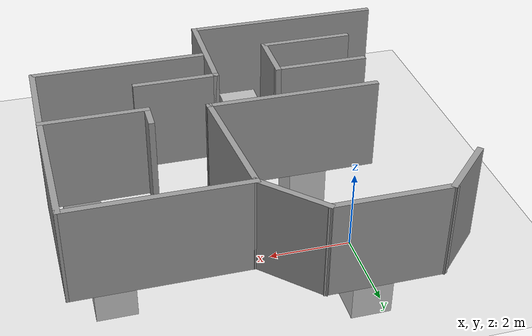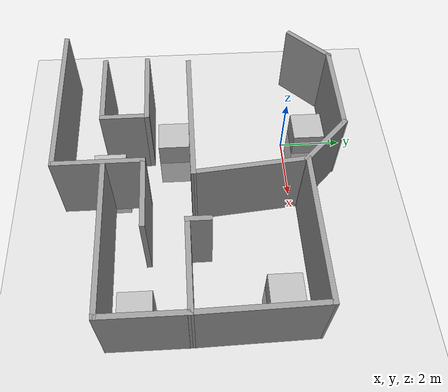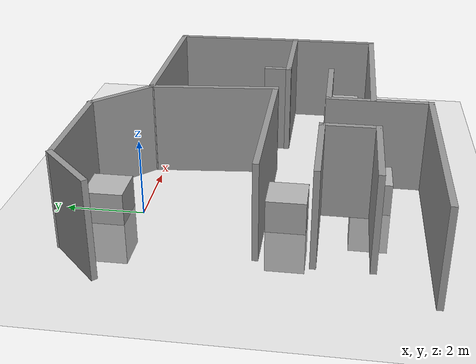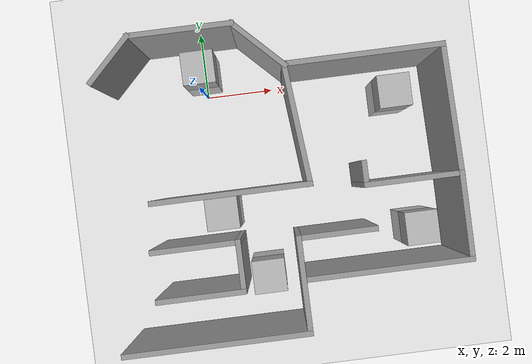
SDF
<sdf version="1.6">
 <world name="default">
  <model name="ground_plane">
   <static>1</static>
   <link name="link">
    <collision name="collision">
     <geometry><plane><normal>0 0 1</normal><size>100 100</size></plane></geometry>
     <surface><friction><ode><mu>100</mu><mu2>50</mu2></ode></friction></surface>
    </collision>
    <visual name="visual">
     <cast_shadows>0</cast_shadows>
     <geometry><plane><normal>0 0 1</normal><size>100 100</size></plane></geometry>
     <material>
      <script><uri>file://media/materials/scripts/gazebo.material</uri><name>Gazebo/Grey</name></script>
     </material>
    </visual>
   </link>
  </model>
  <model name="box_contest3_clone_0">
   <link name="body">
    <inertial>
     <mass>1</mass>
     <inertia><ixx>1</ixx><ixy>0</ixy><ixz>0</ixz><iyy>1</iyy><iyz>0</iyz><izz>1</izz></inertia>
    </inertial>
    <visual name="visual">
     <geometry><mesh><uri>model://box_contest3.dae</uri><scale>1 1 1</scale></mesh></geometry>
     <material><shader type="vertex"><normal_map>__default__</normal_map></shader></material>
    </visual>
    <collision name="collision">
     <geometry><mesh><uri>__default__</uri><scale>1 1 1</scale></mesh></geometry>
     <surface>
      <friction>
       <ode><mu>1</mu><mu2>1</mu2><fdir1>0 0 0</fdir1><slip1>0</slip1><slip2>0</slip2></ode>
       <torsional>
        <coefficient>1</coefficient>
        <patch_radius>0</patch_radius>
        <surface_radius>0</surface_radius>
        <use_patch_radius>1</use_patch_radius>
        <ode><slip>0</slip></ode>
       </torsional>
      </friction>
      <bounce><restitution_coefficient>0</restitution_coefficient><threshold>1e+06</threshold></bounce>
      <contact>
       <collide_without_contact>0</collide_without_contact>
       <collide_without_contact_bitmask>1</collide_without_contact_bitmask>
       <collide_bitmask>1</collide_bitmask>
       <ode>
        <soft_cfm>0</soft_cfm>
        <soft_erp>0.2</soft_erp>
        <kp>1e+13</kp>
        <kd>1</kd>
        <max_vel>0.01</max_vel>
        <min_depth>0</min_depth>
       </ode>
       <bullet>
        <split_impulse>1</split_impulse>
        <split_impulse_penetration_threshold>-0.01</split_impulse_penetration_threshold>
        <soft_cfm>0</soft_cfm>
        <soft_erp>0.2</soft_erp>
        <kp>1e+13</kp>
        <kd>1</kd>
       </bullet>
      </contact>
     </surface>
    </collision>
   </link>
   <static>1</static>
   <pose>-0.13 0.83 -0.159 3.14159 -1.57079 3.14159</pose>
  </model>
  <model name="box_contest3_clone_3">
   <link name="body">
    <inertial>
     <mass>1</mass>
     <inertia><ixx>1</ixx><ixy>0</ixy><ixz>0</ixz><iyy>1</iyy><iyz>0</iyz><izz>1</izz></inertia>
    </inertial>
    <visual name="visual">
     <geometry><mesh><uri>model://box_contest3.dae</uri><scale>1 1 1</scale></mesh></geometry>
     <material><shader type="vertex"><normal_map>__default__</normal_map></shader></material>
    </visual>
    <collision name="collision">
     <geometry><mesh><uri>__default__</uri><scale>1 1 1</scale></mesh></geometry>
     <surface>
      <friction>
       <ode><mu>1</mu><mu2>1</mu2><fdir1>0 0 0</fdir1><slip1>0</slip1><slip2>0</slip2></ode>
       <torsional>
        <coefficient>1</coefficient>
        <patch_radius>0</patch_radius>
        <surface_radius>0</surface_radius>
        <use_patch_radius>1</use_patch_radius>
        <ode><slip>0</slip></ode>
       </torsional>
      </friction>
      <bounce><restitution_coefficient>0</restitution_coefficient><threshold>1e+06</threshold></bounce>
      <contact>
       <collide_without_contact>0</collide_without_contact>
       <collide_without_contact_bitmask>1</collide_without_contact_bitmask>
       <collide_bitmask>1</collide_bitmask>
       <ode>
        <soft_cfm>0</soft_cfm>
        <soft_erp>0.2</soft_erp>
        <kp>1e+13</kp>
        <kd>1</kd>
        <max_vel>0.01</max_vel>
        <min_depth>0</min_depth>
       </ode>
       <bullet>
        <split_impulse>1</split_impulse>
        <split_impulse_penetration_threshold>-0.01</split_impulse_penetration_threshold>
        <soft_cfm>0</soft_cfm>
        <soft_erp>0.2</soft_erp>
        <kp>1e+13</kp>
        <kd>1</kd>
       </bullet>
      </contact>
     </surface>
    </collision>
   </link>
   <static>1</static>
   <pose>1.24 -5.7 -0.159 3.14159 -1.57079 3.14159</pose>
  </model>
  <model name="box_contest3_clone_4">
   <link name="body">
    <inertial>
     <mass>1</mass>
     <inertia><ixx>1</ixx><ixy>0</ixy><ixz>0</ixz><iyy>1</iyy><iyz>0</iyz><izz>1</izz></inertia>
    </inertial>
    <visual name="visual">
     <geometry><mesh><uri>model://box_contest3.dae</uri><scale>1 1 1</scale></mesh></geometry>
     <material><shader type="vertex"><normal_map>__default__</normal_map></shader></material>
    </visual>
    <collision name="collision">
     <geometry><mesh><uri>__default__</uri><scale>1 1 1</scale></mesh></geometry>
     <surface>
      <friction>
       <ode><mu>1</mu><mu2>1</mu2><fdir1>0 0 0</fdir1><slip1>0</slip1><slip2>0</slip2></ode>
       <torsional>
        <coefficient>1</coefficient>
        <patch_radius>0</patch_radius>
        <surface_radius>0</surface_radius>
        <use_patch_radius>1</use_patch_radius>
        <ode><slip>0</slip></ode>
       </torsional>
      </friction>
      <bounce><restitution_coefficient>0</restitution_coefficient><threshold>1e+06</threshold></bounce>
      <contact>
       <collide_without_contact>0</collide_without_contact>
       <collide_without_contact_bitmask>1</collide_without_contact_bitmask>
       <collide_bitmask>1</collide_bitmask>
       <ode>
        <soft_cfm>0</soft_cfm>
        <soft_erp>0.2</soft_erp>
        <kp>1e+13</kp>
        <kd>1</kd>
        <max_vel>0.01</max_vel>
        <min_depth>0</min_depth>
       </ode>
       <bullet>
        <split_impulse>1</split_impulse>
        <split_impulse_penetration_threshold>-0.01</split_impulse_penetration_threshold>
        <soft_cfm>0</soft_cfm>
        <soft_erp>0.2</soft_erp>
        <kp>1e+13</kp>
        <kd>1</kd>
       </bullet>
      </contact>
     </surface>
    </collision>
   </link>
   <static>1</static>
   <pose>6.01 -4.82 -0.159 3.14159 -1.57079 3.14159</pose>
  </model>
  <model name="box_contest3_clone_5">
   <link name="body">
    <inertial>
     <mass>1</mass>
     <inertia><ixx>1</ixx><ixy>0</ixy><ixz>0</ixz><iyy>1</iyy><iyz>0</iyz><izz>1</izz></inertia>
    </inertial>
    <visual name="visual">
     <geometry><mesh><uri>model://box_contest3.dae</uri><scale>1 1 1</scale></mesh></geometry>
     <material><shader type="vertex"><normal_map>__default__</normal_map></shader></material>
    </visual>
    <collision name="collision">
     <geometry><mesh><uri>__default__</uri><scale>1 1 1</scale></mesh></geometry>
     <surface>
      <friction>
       <ode><mu>1</mu><mu2>1</mu2><fdir1>0 0 0</fdir1><slip1>0</slip1><slip2>0</slip2></ode>
       <torsional>
        <coefficient>1</coefficient>
        <patch_radius>0</patch_radius>
        <surface_radius>0</surface_radius>
        <use_patch_radius>1</use_patch_radius>
        <ode><slip>0</slip></ode>
       </torsional>
      </friction>
      <bounce><restitution_coefficient>0</restitution_coefficient><threshold>1e+06</threshold></bounce>
      <contact>
       <collide_without_contact>0</collide_without_contact>
       <collide_without_contact_bitmask>1</collide_without_contact_bitmask>
       <collide_bitmask>1</collide_bitmask>
       <ode>
        <soft_cfm>0</soft_cfm>
        <soft_erp>0.2</soft_erp>
        <kp>1e+13</kp>
        <kd>1</kd>
        <max_vel>0.01</max_vel>
        <min_depth>0</min_depth>
       </ode>
       <bullet>
        <split_impulse>1</split_impulse>
        <split_impulse_penetration_threshold>-0.01</split_impulse_penetration_threshold>
        <soft_cfm>0</soft_cfm>
        <soft_erp>0.2</soft_erp>
        <kp>1e+13</kp>
        <kd>1</kd>
       </bullet>
      </contact>
     </surface>
    </collision>
   </link>
   <static>1</static>
   <pose>5.69 -0.6 -0.159 3.14159 -1.57079 3.14159</pose>
  </model>
  <model name="box_contest3_clone_6">
   <link name="body">
    <inertial>
     <mass>1</mass>
     <inertia><ixx>1</ixx><ixy>0</ixy><ixz>0</ixz><iyy>1</iyy><iyz>0</iyz><izz>1</izz></inertia>
    </inertial>
    <visual name="visual">
     <geometry><mesh><uri>model://box_contest3.dae</uri><scale>1 1 1</scale></mesh></geometry>
     <material><shader type="vertex"><normal_map>__default__</normal_map></shader></material>
    </visual>
    <collision name="collision">
     <geometry><mesh><uri>__default__</uri><scale>1 1 1</scale></mesh></geometry>
     <surface>
      <friction>
       <ode><mu>1</mu><mu2>1</mu2><fdir1>0 0 0</fdir1><slip1>0</slip1><slip2>0</slip2></ode>
       <torsional>
        <coefficient>1</coefficient>
        <patch_radius>0</patch_radius>
        <surface_radius>0</surface_radius>
        <use_patch_radius>1</use_patch_radius>
        <ode><slip>0</slip></ode>
       </torsional>
      </friction>
      <bounce><restitution_coefficient>0</restitution_coefficient><threshold>1e+06</threshold></bounce>
      <contact>
       <collide_without_contact>0</collide_without_contact>
       <collide_without_contact_bitmask>1</collide_without_contact_bitmask>
       <collide_bitmask>1</collide_bitmask>
       <ode>
        <soft_cfm>0</soft_cfm>
        <soft_erp>0.2</soft_erp>
        <kp>1e+13</kp>
        <kd>1</kd>
        <max_vel>0.01</max_vel>
        <min_depth>0</min_depth>
       </ode>
       <bullet>
        <split_impulse>1</split_impulse>
        <split_impulse_penetration_threshold>-0.01</split_impulse_penetration_threshold>
        <soft_cfm>0</soft_cfm>
        <soft_erp>0.2</soft_erp>
        <kp>1e+13</kp>
        <kd>1</kd>
       </bullet>
      </contact>
     </surface>
    </collision>
   </link>
   <static>1</static>
   <pose>0.05 -3.64 -0.159 3.14159 -1.57079 3.14159</pose>
  </model>
  <model name="half-hexagon_0">
   <pose>-0.215109 0.880852 0 0 -0 0</pose>
   <link name="Wall_7">
    <collision name="Wall_7_Collision">
     <geometry><box><size>1.75 0.15 2.5</size></box></geometry>
     <pose>0 0 1.25 0 -0 0</pose>
    </collision>
    <visual name="Wall_7_Visual">
     <pose>0 0 1.25 0 -0 0</pose>
     <geometry><box><size>1.75 0.15 2.5</size></box></geometry>
     <material>
      <script><uri>file://media/materials/scripts/gazebo.material</uri><name>Gazebo/Grey</name></script>
      <ambient>1 1 1 1</ambient>
     </material>
    </visual>
    <pose>-2.07907 0.088388 0 0 -0 0.785398</pose>
   </link>
   <link name="Wall_8">
    <collision name="Wall_8_Collision">
     <geometry><box><size>3 0.15 2.5</size></box></geometry>
     <pose>0 0 1.25 0 -0 0</pose>
    </collision>
    <visual name="Wall_8_Visual">
     <pose>0 0 1.25 0 -0 0</pose>
     <geometry><box><size>3 0.15 2.5</size></box></geometry>
     <material>
      <script><uri>file://media/materials/scripts/gazebo.material</uri><name>Gazebo/Grey</name></script>
      <ambient>1 1 1 1</ambient>
     </material>
    </visual>
    <pose>-0.088388 0.654074 0 0 -0 0</pose>
   </link>
   <link name="Wall_9">
    <collision name="Wall_9_Collision">
     <geometry><box><size>2 0.15 2.5</size></box></geometry>
     <pose>0 0 1.25 0 -0 0</pose>
    </collision>
    <visual name="Wall_9_Visual">
     <pose>0 0 1.25 0 -0 0</pose>
     <geometry><box><size>2 0.15 2.5</size></box></geometry>
     <material>
      <script><uri>file://media/materials/scripts/gazebo.material</uri><name>Gazebo/Grey</name></script>
      <ambient>1 1 1 1</ambient>
     </material>
    </visual>
    <pose>1.99069 0 0 0 0 -0.785398</pose>
   </link>
   <static>1</static>
  </model>
  <model name="practicehouse">
   <link name="Wall_20">
    <pose>-0.231133 -2.32339 0 0 -0 0</pose>
    <visual name="Wall_20_Visual">
     <pose>0 0 1.25 0 -0 0</pose>
     <geometry><box><size>2.5 0.15 2.5</size></box></geometry>
     <material>
      <script><uri>file://media/materials/scripts/gazebo.material</uri><name>Gazebo/Grey</name></script>
      <ambient>1 1 1 1</ambient>
      <diffuse>0.7 0.7 0.7 1</diffuse>
      <specular>0.01 0.01 0.01 1</specular>
      <emissive>0 0 0 1</emissive>
     </material>
    </visual>
    <collision name="Wall_20_Collision">
     <pose>0 0 1.25 0 -0 0</pose>
     <geometry><box><size>2.5 0.15 2.5</size></box></geometry>
     <surface>
      <friction>
       <ode><mu>1</mu><mu2>1</mu2><fdir1>0 0 0</fdir1><slip1>0</slip1><slip2>0</slip2></ode>
       <torsional>
        <coefficient>1</coefficient>
        <patch_radius>0</patch_radius>
        <surface_radius>0</surface_radius>
        <use_patch_radius>1</use_patch_radius>
        <ode><slip>0</slip></ode>
       </torsional>
      </friction>
      <bounce><restitution_coefficient>0</restitution_coefficient><threshold>1e+06</threshold></bounce>
      <contact>
       <collide_without_contact>0</collide_without_contact>
       <collide_without_contact_bitmask>1</collide_without_contact_bitmask>
       <collide_bitmask>1</collide_bitmask>
       <ode>
        <soft_cfm>0</soft_cfm>
        <soft_erp>0.2</soft_erp>
        <kp>1e+13</kp>
        <kd>1</kd>
        <max_vel>0.01</max_vel>
        <min_depth>0</min_depth>
       </ode>
       <bullet>
        <split_impulse>1</split_impulse>
        <split_impulse_penetration_threshold>-0.01</split_impulse_penetration_threshold>
        <soft_cfm>0</soft_cfm>
        <soft_erp>0.2</soft_erp>
        <kp>1e+13</kp>
        <kd>1</kd>
       </bullet>
      </contact>
     </surface>
    </collision>
   </link>
   <link name="Wall_21">
    <pose>0.943867 -1.64839 0 0 -0 1.5708</pose>
    <visual name="Wall_21_Visual">
     <pose>0 0 1.25 0 -0 0</pose>
     <geometry><box><size>1.5 0.15 2.5</size></box></geometry>
     <material>
      <script><uri>file://media/materials/scripts/gazebo.material</uri><name>Gazebo/Grey</name></script>
      <ambient>1 1 1 1</ambient>
      <diffuse>0.7 0.7 0.7 1</diffuse>
      <specular>0.01 0.01 0.01 1</specular>
      <emissive>0 0 0 1</emissive>
     </material>
    </visual>
    <collision name="Wall_21_Collision">
     <pose>0 0 1.25 0 -0 0</pose>
     <geometry><box><size>1.5 0.15 2.5</size></box></geometry>
     <surface>
      <friction>
       <ode><mu>1</mu><mu2>1</mu2><fdir1>0 0 0</fdir1><slip1>0</slip1><slip2>0</slip2></ode>
       <torsional>
        <coefficient>1</coefficient>
        <patch_radius>0</patch_radius>
        <surface_radius>0</surface_radius>
        <use_patch_radius>1</use_patch_radius>
        <ode><slip>0</slip></ode>
       </torsional>
      </friction>
      <bounce><restitution_coefficient>0</restitution_coefficient><threshold>1e+06</threshold></bounce>
      <contact>
       <collide_without_contact>0</collide_without_contact>
       <collide_without_contact_bitmask>1</collide_without_contact_bitmask>
       <collide_bitmask>1</collide_bitmask>
       <ode>
        <soft_cfm>0</soft_cfm>
        <soft_erp>0.2</soft_erp>
        <kp>1e+13</kp>
        <kd>1</kd>
        <max_vel>0.01</max_vel>
        <min_depth>0</min_depth>
       </ode>
       <bullet>
        <split_impulse>1</split_impulse>
        <split_impulse_penetration_threshold>-0.01</split_impulse_penetration_threshold>
        <soft_cfm>0</soft_cfm>
        <soft_erp>0.2</soft_erp>
        <kp>1e+13</kp>
        <kd>1</kd>
       </bullet>
      </contact>
     </surface>
    </collision>
   </link>
   <link name="Wall_22">
    <pose>-0.231133 -0.973393 0 0 -0 3.14159</pose>
    <visual name="Wall_22_Visual">
     <pose>0 0 1.25 0 -0 0</pose>
     <geometry><box><size>2.5 0.15 2.5</size></box></geometry>
     <material>
      <script><uri>file://media/materials/scripts/gazebo.material</uri><name>Gazebo/Grey</name></script>
      <ambient>1 1 1 1</ambient>
      <diffuse>0.7 0.7 0.7 1</diffuse>
      <specular>0.01 0.01 0.01 1</specular>
      <emissive>0 0 0 1</emissive>
     </material>
    </visual>
    <collision name="Wall_22_Collision">
     <pose>0 0 1.25 0 -0 0</pose>
     <geometry><box><size>2.5 0.15 2.5</size></box></geometry>
     <surface>
      <friction>
       <ode><mu>1</mu><mu2>1</mu2><fdir1>0 0 0</fdir1><slip1>0</slip1><slip2>0</slip2></ode>
       <torsional>
        <coefficient>1</coefficient>
        <patch_radius>0</patch_radius>
        <surface_radius>0</surface_radius>
        <use_patch_radius>1</use_patch_radius>
        <ode><slip>0</slip></ode>
       </torsional>
      </friction>
      <bounce><restitution_coefficient>0</restitution_coefficient><threshold>1e+06</threshold></bounce>
      <contact>
       <collide_without_contact>0</collide_without_contact>
       <collide_without_contact_bitmask>1</collide_without_contact_bitmask>
       <collide_bitmask>1</collide_bitmask>
       <ode>
        <soft_cfm>0</soft_cfm>
        <soft_erp>0.2</soft_erp>
        <kp>1e+13</kp>
        <kd>1</kd>
        <max_vel>0.01</max_vel>
        <min_depth>0</min_depth>
       </ode>
       <bullet>
        <split_impulse>1</split_impulse>
        <split_impulse_penetration_threshold>-0.01</split_impulse_penetration_threshold>
        <soft_cfm>0</soft_cfm>
        <soft_erp>0.2</soft_erp>
        <kp>1e+13</kp>
        <kd>1</kd>
       </bullet>
      </contact>
     </surface>
    </collision>
   </link>
   <link name="Wall_25">
    <pose>0.043867 -3.67339 0 0 -0 0</pose>
    <visual name="Wall_25_Visual">
     <pose>0 0 1.25 0 -0 0</pose>
     <geometry><box><size>5.25 0.15 2.5</size></box></geometry>
     <material>
      <script><uri>file://media/materials/scripts/gazebo.material</uri><name>Gazebo/Grey</name></script>
      <ambient>1 1 1 1</ambient>
      <diffuse>0.7 0.7 0.7 1</diffuse>
      <specular>0.01 0.01 0.01 1</specular>
      <emissive>0 0 0 1</emissive>
     </material>
    </visual>
    <collision name="Wall_25_Collision">
     <pose>0 0 1.25 0 -0 0</pose>
     <geometry><box><size>5.25 0.15 2.5</size></box></geometry>
     <surface>
      <friction>
       <ode><mu>1</mu><mu2>1</mu2><fdir1>0 0 0</fdir1><slip1>0</slip1><slip2>0</slip2></ode>
       <torsional>
        <coefficient>1</coefficient>
        <patch_radius>0</patch_radius>
        <surface_radius>0</surface_radius>
        <use_patch_radius>1</use_patch_radius>
        <ode><slip>0</slip></ode>
       </torsional>
      </friction>
      <bounce><restitution_coefficient>0</restitution_coefficient><threshold>1e+06</threshold></bounce>
      <contact>
       <collide_without_contact>0</collide_without_contact>
       <collide_without_contact_bitmask>1</collide_without_contact_bitmask>
       <collide_bitmask>1</collide_bitmask>
       <ode>
        <soft_cfm>0</soft_cfm>
        <soft_erp>0.2</soft_erp>
        <kp>1e+13</kp>
        <kd>1</kd>
        <max_vel>0.01</max_vel>
        <min_depth>0</min_depth>
       </ode>
       <bullet>
        <split_impulse>1</split_impulse>
        <split_impulse_penetration_threshold>-0.01</split_impulse_penetration_threshold>
        <soft_cfm>0</soft_cfm>
        <soft_erp>0.2</soft_erp>
        <kp>1e+13</kp>
        <kd>1</kd>
       </bullet>
      </contact>
     </surface>
    </collision>
   </link>
   <link name="Wall_26">
    <pose>2.59387 -2.37339 0 0 -0 1.5708</pose>
    <visual name="Wall_26_Visual">
     <pose>0 0 1.25 0 -0 0</pose>
     <geometry><box><size>2.75 0.15 2.5</size></box></geometry>
     <material>
      <script><uri>file://media/materials/scripts/gazebo.material</uri><name>Gazebo/Grey</name></script>
      <ambient>1 1 1 1</ambient>
      <diffuse>0.7 0.7 0.7 1</diffuse>
      <specular>0.01 0.01 0.01 1</specular>
      <emissive>0 0 0 1</emissive>
     </material>
    </visual>
    <collision name="Wall_26_Collision">
     <pose>0 0 1.25 0 -0 0</pose>
     <geometry><box><size>2.75 0.15 2.5</size></box></geometry>
     <surface>
      <friction>
       <ode><mu>1</mu><mu2>1</mu2><fdir1>0 0 0</fdir1><slip1>0</slip1><slip2>0</slip2></ode>
       <torsional>
        <coefficient>1</coefficient>
        <patch_radius>0</patch_radius>
        <surface_radius>0</surface_radius>
        <use_patch_radius>1</use_patch_radius>
        <ode><slip>0</slip></ode>
       </torsional>
      </friction>
      <bounce><restitution_coefficient>0</restitution_coefficient><threshold>1e+06</threshold></bounce>
      <contact>
       <collide_without_contact>0</collide_without_contact>
       <collide_without_contact_bitmask>1</collide_without_contact_bitmask>
       <collide_bitmask>1</collide_bitmask>
       <ode>
        <soft_cfm>0</soft_cfm>
        <soft_erp>0.2</soft_erp>
        <kp>1e+13</kp>
        <kd>1</kd>
        <max_vel>0.01</max_vel>
        <min_depth>0</min_depth>
       </ode>
       <bullet>
        <split_impulse>1</split_impulse>
        <split_impulse_penetration_threshold>-0.01</split_impulse_penetration_threshold>
        <soft_cfm>0</soft_cfm>
        <soft_erp>0.2</soft_erp>
        <kp>1e+13</kp>
        <kd>1</kd>
       </bullet>
      </contact>
     </surface>
    </collision>
   </link>
   <link name="Wall_27">
    <pose>3.64387 -1.07339 0 0 -0 0</pose>
    <visual name="Wall_27_Visual">
     <pose>0 0 1.25 0 -0 0</pose>
     <geometry><box><size>2.25 0.15 2.5</size></box></geometry>
     <material>
      <script><uri>file://media/materials/scripts/gazebo.material</uri><name>Gazebo/Grey</name></script>
      <ambient>1 1 1 1</ambient>
      <diffuse>0.7 0.7 0.7 1</diffuse>
      <specular>0.01 0.01 0.01 1</specular>
      <emissive>0 0 0 1</emissive>
     </material>
    </visual>
    <collision name="Wall_27_Collision">
     <pose>0 0 1.25 0 -0 0</pose>
     <geometry><box><size>2.25 0.15 2.5</size></box></geometry>
     <surface>
      <friction>
       <ode><mu>1</mu><mu2>1</mu2><fdir1>0 0 0</fdir1><slip1>0</slip1><slip2>0</slip2></ode>
       <torsional>
        <coefficient>1</coefficient>
        <patch_radius>0</patch_radius>
        <surface_radius>0</surface_radius>
        <use_patch_radius>1</use_patch_radius>
        <ode><slip>0</slip></ode>
       </torsional>
      </friction>
      <bounce><restitution_coefficient>0</restitution_coefficient><threshold>1e+06</threshold></bounce>
      <contact>
       <collide_without_contact>0</collide_without_contact>
       <collide_without_contact_bitmask>1</collide_without_contact_bitmask>
       <collide_bitmask>1</collide_bitmask>
       <ode>
        <soft_cfm>0</soft_cfm>
        <soft_erp>0.2</soft_erp>
        <kp>1e+13</kp>
        <kd>1</kd>
        <max_vel>0.01</max_vel>
        <min_depth>0</min_depth>
       </ode>
       <bullet>
        <split_impulse>1</split_impulse>
        <split_impulse_penetration_threshold>-0.01</split_impulse_penetration_threshold>
        <soft_cfm>0</soft_cfm>
        <soft_erp>0.2</soft_erp>
        <kp>1e+13</kp>
        <kd>1</kd>
       </bullet>
      </contact>
     </surface>
    </collision>
   </link>
   <link name="Wall_29">
    <pose>4.90454 -2.21861 0 0 -0 0</pose>
    <visual name="Wall_29_Visual">
     <pose>0 0 1.25 0 -0 0</pose>
     <geometry><box><size>4.75 0.15 2.5</size></box></geometry>
     <material>
      <script><uri>file://media/materials/scripts/gazebo.material</uri><name>Gazebo/Grey</name></script>
      <ambient>1 1 1 1</ambient>
      <diffuse>0.7 0.7 0.7 1</diffuse>
      <specular>0.01 0.01 0.01 1</specular>
      <emissive>0 0 0 1</emissive>
     </material>
    </visual>
    <collision name="Wall_29_Collision">
     <pose>0 0 1.25 0 -0 0</pose>
     <geometry><box><size>4.75 0.15 2.5</size></box></geometry>
     <surface>
      <friction>
       <ode><mu>1</mu><mu2>1</mu2><fdir1>0 0 0</fdir1><slip1>0</slip1><slip2>0</slip2></ode>
       <torsional>
        <coefficient>1</coefficient>
        <patch_radius>0</patch_radius>
        <surface_radius>0</surface_radius>
        <use_patch_radius>1</use_patch_radius>
        <ode><slip>0</slip></ode>
       </torsional>
      </friction>
      <bounce><restitution_coefficient>0</restitution_coefficient><threshold>1e+06</threshold></bounce>
      <contact>
       <collide_without_contact>0</collide_without_contact>
       <collide_without_contact_bitmask>1</collide_without_contact_bitmask>
       <collide_bitmask>1</collide_bitmask>
       <ode>
        <soft_cfm>0</soft_cfm>
        <soft_erp>0.2</soft_erp>
        <kp>1e+13</kp>
        <kd>1</kd>
        <max_vel>0.01</max_vel>
        <min_depth>0</min_depth>
       </ode>
       <bullet>
        <split_impulse>1</split_impulse>
        <split_impulse_penetration_threshold>-0.01</split_impulse_penetration_threshold>
        <soft_cfm>0</soft_cfm>
        <soft_erp>0.2</soft_erp>
        <kp>1e+13</kp>
        <kd>1</kd>
       </bullet>
      </contact>
     </surface>
    </collision>
   </link>
   <link name="Wall_30">
    <pose>7.20454 -1.04361 0 0 -0 1.5708</pose>
    <visual name="Wall_30_Visual">
     <pose>0 0 1.25 0 -0 0</pose>
     <geometry><box><size>2.5 0.15 2.5</size></box></geometry>
     <material>
      <script><uri>file://media/materials/scripts/gazebo.material</uri><name>Gazebo/Grey</name></script>
      <ambient>1 1 1 1</ambient>
      <diffuse>0.7 0.7 0.7 1</diffuse>
      <specular>0.01 0.01 0.01 1</specular>
      <emissive>0 0 0 1</emissive>
     </material>
    </visual>
    <collision name="Wall_30_Collision">
     <pose>0 0 1.25 0 -0 0</pose>
     <geometry><box><size>2.5 0.15 2.5</size></box></geometry>
     <surface>
      <friction>
       <ode><mu>1</mu><mu2>1</mu2><fdir1>0 0 0</fdir1><slip1>0</slip1><slip2>0</slip2></ode>
       <torsional>
        <coefficient>1</coefficient>
        <patch_radius>0</patch_radius>
        <surface_radius>0</surface_radius>
        <use_patch_radius>1</use_patch_radius>
        <ode><slip>0</slip></ode>
       </torsional>
      </friction>
      <bounce><restitution_coefficient>0</restitution_coefficient><threshold>1e+06</threshold></bounce>
      <contact>
       <collide_without_contact>0</collide_without_contact>
       <collide_without_contact_bitmask>1</collide_without_contact_bitmask>
       <collide_bitmask>1</collide_bitmask>
       <ode>
        <soft_cfm>0</soft_cfm>
        <soft_erp>0.2</soft_erp>
        <kp>1e+13</kp>
        <kd>1</kd>
        <max_vel>0.01</max_vel>
        <min_depth>0</min_depth>
       </ode>
       <bullet>
        <split_impulse>1</split_impulse>
        <split_impulse_penetration_threshold>-0.01</split_impulse_penetration_threshold>
        <soft_cfm>0</soft_cfm>
        <soft_erp>0.2</soft_erp>
        <kp>1e+13</kp>
        <kd>1</kd>
       </bullet>
      </contact>
     </surface>
    </collision>
   </link>
   <link name="Wall_31">
    <pose>5.90454 0.131392 0 0 -0 3.14159</pose>
    <visual name="Wall_31_Visual">
     <pose>0 0 1.25 0 -0 0</pose>
     <geometry><box><size>2.75 0.15 2.5</size></box></geometry>
     <material>
      <script><uri>file://media/materials/scripts/gazebo.material</uri><name>Gazebo/Grey</name></script>
      <ambient>1 1 1 1</ambient>
      <diffuse>0.7 0.7 0.7 1</diffuse>
      <specular>0.01 0.01 0.01 1</specular>
      <emissive>0 0 0 1</emissive>
     </material>
    </visual>
    <collision name="Wall_31_Collision">
     <pose>0 0 1.25 0 -0 0</pose>
     <geometry><box><size>2.75 0.15 2.5</size></box></geometry>
     <surface>
      <friction>
       <ode><mu>1</mu><mu2>1</mu2><fdir1>0 0 0</fdir1><slip1>0</slip1><slip2>0</slip2></ode>
       <torsional>
        <coefficient>1</coefficient>
        <patch_radius>0</patch_radius>
        <surface_radius>0</surface_radius>
        <use_patch_radius>1</use_patch_radius>
        <ode><slip>0</slip></ode>
       </torsional>
      </friction>
      <bounce><restitution_coefficient>0</restitution_coefficient><threshold>1e+06</threshold></bounce>
      <contact>
       <collide_without_contact>0</collide_without_contact>
       <collide_without_contact_bitmask>1</collide_without_contact_bitmask>
       <collide_bitmask>1</collide_bitmask>
       <ode>
        <soft_cfm>0</soft_cfm>
        <soft_erp>0.2</soft_erp>
        <kp>1e+13</kp>
        <kd>1</kd>
        <max_vel>0.01</max_vel>
        <min_depth>0</min_depth>
       </ode>
       <bullet>
        <split_impulse>1</split_impulse>
        <split_impulse_penetration_threshold>-0.01</split_impulse_penetration_threshold>
        <soft_cfm>0</soft_cfm>
        <soft_erp>0.2</soft_erp>
        <kp>1e+13</kp>
        <kd>1</kd>
       </bullet>
      </contact>
     </surface>
    </collision>
   </link>
   <link name="Wall_32">
    <pose>4.60454 0.431392 0 0 -0 1.5708</pose>
    <visual name="Wall_32_Visual">
     <pose>0 0 1.25 0 -0 0</pose>
     <geometry><box><size>0.75 0.15 2.5</size></box></geometry>
     <material>
      <script><uri>file://media/materials/scripts/gazebo.material</uri><name>Gazebo/Grey</name></script>
      <ambient>1 1 1 1</ambient>
      <diffuse>0.7 0.7 0.7 1</diffuse>
      <specular>0.01 0.01 0.01 1</specular>
      <emissive>0 0 0 1</emissive>
     </material>
    </visual>
    <collision name="Wall_32_Collision">
     <pose>0 0 1.25 0 -0 0</pose>
     <geometry><box><size>0.75 0.15 2.5</size></box></geometry>
     <surface>
      <friction>
       <ode><mu>1</mu><mu2>1</mu2><fdir1>0 0 0</fdir1><slip1>0</slip1><slip2>0</slip2></ode>
       <torsional>
        <coefficient>1</coefficient>
        <patch_radius>0</patch_radius>
        <surface_radius>0</surface_radius>
        <use_patch_radius>1</use_patch_radius>
        <ode><slip>0</slip></ode>
       </torsional>
      </friction>
      <bounce><restitution_coefficient>0</restitution_coefficient><threshold>1e+06</threshold></bounce>
      <contact>
       <collide_without_contact>0</collide_without_contact>
       <collide_without_contact_bitmask>1</collide_without_contact_bitmask>
       <collide_bitmask>1</collide_bitmask>
       <ode>
        <soft_cfm>0</soft_cfm>
        <soft_erp>0.2</soft_erp>
        <kp>1e+13</kp>
        <kd>1</kd>
        <max_vel>0.01</max_vel>
        <min_depth>0</min_depth>
       </ode>
       <bullet>
        <split_impulse>1</split_impulse>
        <split_impulse_penetration_threshold>-0.01</split_impulse_penetration_threshold>
        <soft_cfm>0</soft_cfm>
        <soft_erp>0.2</soft_erp>
        <kp>1e+13</kp>
        <kd>1</kd>
       </bullet>
      </contact>
     </surface>
    </collision>
   </link>
   <link name="Wall_35">
    <pose>0.91424 0.352431 0 0 -0 0</pose>
    <visual name="Wall_35_Visual">
     <pose>0 0 1.25 0 -0 0</pose>
     <geometry><box><size>4.5 0.15 2.5</size></box></geometry>
     <material>
      <script><uri>file://media/materials/scripts/gazebo.material</uri><name>Gazebo/Grey</name></script>
      <ambient>1 1 1 1</ambient>
      <diffuse>0.7 0.7 0.7 1</diffuse>
      <specular>0.01 0.01 0.01 1</specular>
      <emissive>0 0 0 1</emissive>
     </material>
    </visual>
    <collision name="Wall_35_Collision">
     <pose>0 0 1.25 0 -0 0</pose>
     <geometry><box><size>4.5 0.15 2.5</size></box></geometry>
     <surface>
      <friction>
       <ode><mu>1</mu><mu2>1</mu2><fdir1>0 0 0</fdir1><slip1>0</slip1><slip2>0</slip2></ode>
       <torsional>
        <coefficient>1</coefficient>
        <patch_radius>0</patch_radius>
        <surface_radius>0</surface_radius>
        <use_patch_radius>1</use_patch_radius>
        <ode><slip>0</slip></ode>
       </torsional>
      </friction>
      <bounce><restitution_coefficient>0</restitution_coefficient><threshold>1e+06</threshold></bounce>
      <contact>
       <collide_without_contact>0</collide_without_contact>
       <collide_without_contact_bitmask>1</collide_without_contact_bitmask>
       <collide_bitmask>1</collide_bitmask>
       <ode>
        <soft_cfm>0</soft_cfm>
        <soft_erp>0.2</soft_erp>
        <kp>1e+13</kp>
        <kd>1</kd>
        <max_vel>0.01</max_vel>
        <min_depth>0</min_depth>
       </ode>
       <bullet>
        <split_impulse>1</split_impulse>
        <split_impulse_penetration_threshold>-0.01</split_impulse_penetration_threshold>
        <soft_cfm>0</soft_cfm>
        <soft_erp>0.2</soft_erp>
        <kp>1e+13</kp>
        <kd>1</kd>
       </bullet>
      </contact>
     </surface>
    </collision>
   </link>
   <link name="Wall_36">
    <pose>2.93404 2.00958 0 0 -0 1.66418</pose>
    <visual name="Wall_36_Visual">
     <pose>0 0 1.25 0 -0 0</pose>
     <geometry><box><size>3.4788 0.15 2.5</size></box></geometry>
     <material>
      <script><uri>file://media/materials/scripts/gazebo.material</uri><name>Gazebo/Grey</name></script>
      <ambient>1 1 1 1</ambient>
      <diffuse>0.7 0.7 0.7 1</diffuse>
      <specular>0.01 0.01 0.01 1</specular>
      <emissive>0 0 0 1</emissive>
     </material>
    </visual>
    <collision name="Wall_36_Collision">
     <pose>0 0 1.25 0 -0 0</pose>
     <geometry><box><size>3.4788 0.15 2.5</size></box></geometry>
     <surface>
      <friction>
       <ode><mu>1</mu><mu2>1</mu2><fdir1>0 0 0</fdir1><slip1>0</slip1><slip2>0</slip2></ode>
       <torsional>
        <coefficient>1</coefficient>
        <patch_radius>0</patch_radius>
        <surface_radius>0</surface_radius>
        <use_patch_radius>1</use_patch_radius>
        <ode><slip>0</slip></ode>
       </torsional>
      </friction>
      <bounce><restitution_coefficient>0</restitution_coefficient><threshold>1e+06</threshold></bounce>
      <contact>
       <collide_without_contact>0</collide_without_contact>
       <collide_without_contact_bitmask>1</collide_without_contact_bitmask>
       <collide_bitmask>1</collide_bitmask>
       <ode>
        <soft_cfm>0</soft_cfm>
        <soft_erp>0.2</soft_erp>
        <kp>1e+13</kp>
        <kd>1</kd>
        <max_vel>0.01</max_vel>
        <min_depth>0</min_depth>
       </ode>
       <bullet>
        <split_impulse>1</split_impulse>
        <split_impulse_penetration_threshold>-0.01</split_impulse_penetration_threshold>
        <soft_cfm>0</soft_cfm>
        <soft_erp>0.2</soft_erp>
        <kp>1e+13</kp>
        <kd>1</kd>
       </bullet>
      </contact>
     </surface>
    </collision>
   </link>
   <link name="Wall_39">
    <pose>4.95385 3.66673 0 0 -0 0</pose>
    <visual name="Wall_39_Visual">
     <pose>0 0 1.25 0 -0 0</pose>
     <geometry><box><size>4.5 0.15 2.5</size></box></geometry>
     <material>
      <script><uri>file://media/materials/scripts/gazebo.material</uri><name>Gazebo/Grey</name></script>
      <ambient>1 1 1 1</ambient>
      <diffuse>0.7 0.7 0.7 1</diffuse>
      <specular>0.01 0.01 0.01 1</specular>
      <emissive>0 0 0 1</emissive>
     </material>
    </visual>
    <collision name="Wall_39_Collision">
     <pose>0 0 1.25 0 -0 0</pose>
     <geometry><box><size>4.5 0.15 2.5</size></box></geometry>
     <surface>
      <friction>
       <ode><mu>1</mu><mu2>1</mu2><fdir1>0 0 0</fdir1><slip1>0</slip1><slip2>0</slip2></ode>
       <torsional>
        <coefficient>1</coefficient>
        <patch_radius>0</patch_radius>
        <surface_radius>0</surface_radius>
        <use_patch_radius>1</use_patch_radius>
        <ode><slip>0</slip></ode>
       </torsional>
      </friction>
      <bounce><restitution_coefficient>0</restitution_coefficient><threshold>1e+06</threshold></bounce>
      <contact>
       <collide_without_contact>0</collide_without_contact>
       <collide_without_contact_bitmask>1</collide_without_contact_bitmask>
       <collide_bitmask>1</collide_bitmask>
       <ode>
        <soft_cfm>0</soft_cfm>
        <soft_erp>0.2</soft_erp>
        <kp>1e+13</kp>
        <kd>1</kd>
        <max_vel>0.01</max_vel>
        <min_depth>0</min_depth>
       </ode>
       <bullet>
        <split_impulse>1</split_impulse>
        <split_impulse_penetration_threshold>-0.01</split_impulse_penetration_threshold>
        <soft_cfm>0</soft_cfm>
        <soft_erp>0.2</soft_erp>
        <kp>1e+13</kp>
        <kd>1</kd>
       </bullet>
      </contact>
     </surface>
    </collision>
   </link>
   <link name="Wall_40">
    <pose>7.1667 1.89906 0 0 0 -1.54939</pose>
    <visual name="Wall_40_Visual">
     <pose>0 0 1.25 0 -0 0</pose>
     <geometry><box><size>3.68614 0.15 2.5</size></box></geometry>
     <material>
      <script><uri>file://media/materials/scripts/gazebo.material</uri><name>Gazebo/Grey</name></script>
      <ambient>1 1 1 1</ambient>
      <diffuse>0.7 0.7 0.7 1</diffuse>
      <specular>0.01 0.01 0.01 1</specular>
      <emissive>0 0 0 1</emissive>
     </material>
    </visual>
    <collision name="Wall_40_Collision">
     <pose>0 0 1.25 0 -0 0</pose>
     <geometry><box><size>3.68614 0.15 2.5</size></box></geometry>
     <surface>
      <friction>
       <ode><mu>1</mu><mu2>1</mu2><fdir1>0 0 0</fdir1><slip1>0</slip1><slip2>0</slip2></ode>
       <torsional>
        <coefficient>1</coefficient>
        <patch_radius>0</patch_radius>
        <surface_radius>0</surface_radius>
        <use_patch_radius>1</use_patch_radius>
        <ode><slip>0</slip></ode>
       </torsional>
      </friction>
      <bounce><restitution_coefficient>0</restitution_coefficient><threshold>1e+06</threshold></bounce>
      <contact>
       <collide_without_contact>0</collide_without_contact>
       <collide_without_contact_bitmask>1</collide_without_contact_bitmask>
       <collide_bitmask>1</collide_bitmask>
       <ode>
        <soft_cfm>0</soft_cfm>
        <soft_erp>0.2</soft_erp>
        <kp>1e+13</kp>
        <kd>1</kd>
        <max_vel>0.01</max_vel>
        <min_depth>0</min_depth>
       </ode>
       <bullet>
        <split_impulse>1</split_impulse>
        <split_impulse_penetration_threshold>-0.01</split_impulse_penetration_threshold>
        <soft_cfm>0</soft_cfm>
        <soft_erp>0.2</soft_erp>
        <kp>1e+13</kp>
        <kd>1</kd>
       </bullet>
      </contact>
     </surface>
    </collision>
   </link>
   <static>1</static>
   <pose>-0.375353 -3.40655 0 0 -0 0</pose>
  </model>
 </world>
</sdf>
